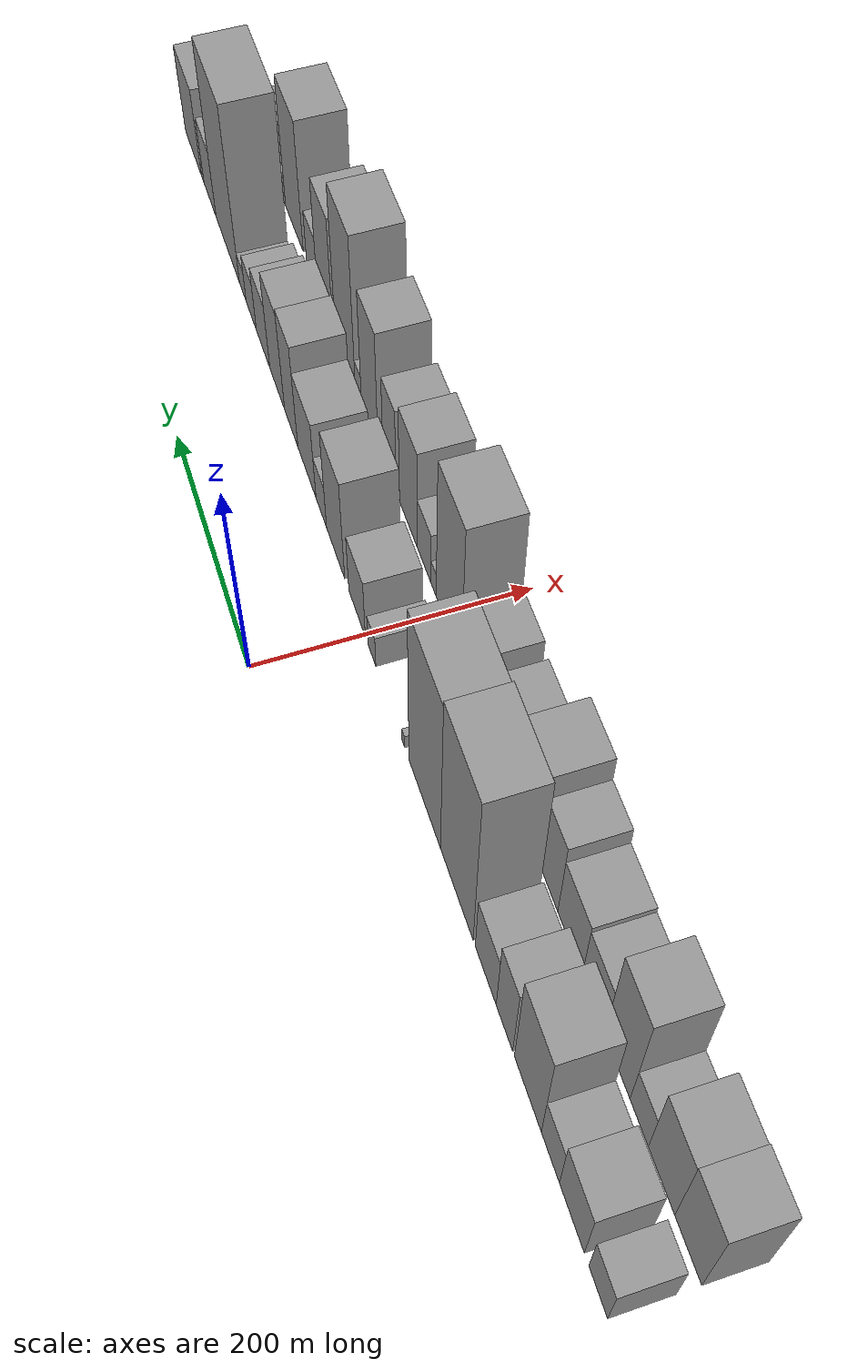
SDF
<sdf version="1.6">
 <world name="default">
  <scene>
   <sky><clouds><speed>12</speed></clouds></sky>
   <ambient>0.4 0.4 0.4 1</ambient>
   <background>0.7 0.7 0.7 1</background>
   <shadows>1</shadows>
  </scene>
  <gravity>0 0 -9.8066</gravity>
  <magnetic_field>6e-06 2.3e-05 -4.2e-05</magnetic_field>
  <physics default="0" name="default_physics" type="ode">
   <ode>
    <solver>
     <type>quick</type>
     <iters>10</iters>
     <sor>1.0</sor>
     <use_dynamic_moi_rescaling>0</use_dynamic_moi_rescaling>
    </solver>
    <constraints>
     <cfm>0</cfm>
     <erp>0.2</erp>
     <contact_max_correcting_vel>100</contact_max_correcting_vel>
     <contact_surface_layer>0.001</contact_surface_layer>
    </constraints>
   </ode>
   <max_step_size>0.004</max_step_size>
   <real_time_factor>1</real_time_factor>
   <real_time_update_rate>250</real_time_update_rate>
  </physics>
  <light name="sun" type="directional">
   <pose>0 0 10 0 0 0</pose>
   <diffuse>0.8 0.8 0.8 1</diffuse>
   <specular>0.2 0.2 0.2 1</specular>
   <attenuation>
    <range>1000</range>
    <constant>0.9</constant>
    <linear>0.01</linear>
    <quadratic>0.001</quadratic>
   </attenuation>
   <direction>-0.5 0.1 -0.9</direction>
  </light>
  <model name="building_1">
   <static>1</static>
   <pose>100.0000 -435.7821 0 0.000000 0.000000 0.000000</pose>
   <link name="link">
    <pose>0 0 27.00 0 0 0</pose>
    <collision name="collision"><geometry><box><size>40.0000 28.4359 54.0000</size></box></geometry></collision>
    <visual name="visual">
     <cast_shadows>0</cast_shadows>
     <geometry><box><size>40.0000 28.4359 54.0000</size></box></geometry>
     <material>
      <script>
       <uri>model://grey_wall/materials/scripts</uri>
       <uri>model://grey_wall/materials/textures</uri>
       <name>vrc/grey_wall</name>
      </script>
     </material>
    </visual>
   </link>
  </model>
  <model name="building_2">
   <static>1</static>
   <pose>100.0000 -394.8124 0 0.000000 0.000000 0.000000</pose>
   <link name="link">
    <pose>0 0 36.00 0 0 0</pose>
    <collision name="collision"><geometry><box><size>40.0000 39.5034 72.0000</size></box></geometry></collision>
    <visual name="visual">
     <cast_shadows>0</cast_shadows>
     <geometry><box><size>40.0000 39.5034 72.0000</size></box></geometry>
     <material>
      <script>
       <uri>model://grey_wall/materials/scripts</uri>
       <uri>model://grey_wall/materials/textures</uri>
       <name>vrc/grey_wall</name>
      </script>
     </material>
    </visual>
   </link>
  </model>
  <model name="building_3">
   <static>1</static>
   <pose>100.0000 -360.1976 0 0.000000 0.000000 0.000000</pose>
   <link name="link">
    <pose>0 0 28.50 0 0 0</pose>
    <collision name="collision"><geometry><box><size>40.0000 29.7262 57.0000</size></box></geometry></collision>
    <visual name="visual">
     <cast_shadows>0</cast_shadows>
     <geometry><box><size>40.0000 29.7262 57.0000</size></box></geometry>
     <material>
      <script>
       <uri>model://grey_wall/materials/scripts</uri>
       <uri>model://grey_wall/materials/textures</uri>
       <name>vrc/grey_wall</name>
      </script>
     </material>
    </visual>
   </link>
  </model>
  <model name="building_4">
   <static>1</static>
   <pose>100.0000 -322.3802 0 0.000000 0.000000 0.000000</pose>
   <link name="link">
    <pose>0 0 61.50 0 0 0</pose>
    <collision name="collision"><geometry><box><size>40.0000 45.9087 123.0000</size></box></geometry></collision>
    <visual name="visual">
     <cast_shadows>0</cast_shadows>
     <geometry><box><size>40.0000 45.9087 123.0000</size></box></geometry>
     <material>
      <script>
       <uri>model://grey_wall/materials/scripts</uri>
       <uri>model://grey_wall/materials/textures</uri>
       <name>vrc/grey_wall</name>
      </script>
     </material>
    </visual>
   </link>
  </model>
  <model name="building_5">
   <static>1</static>
   <pose>100.0000 -281.8049 0 0.000000 0.000000 0.000000</pose>
   <link name="link">
    <pose>0 0 46.50 0 0 0</pose>
    <collision name="collision"><geometry><box><size>40.0000 29.2420 93.0000</size></box></geometry></collision>
    <visual name="visual">
     <cast_shadows>0</cast_shadows>
     <geometry><box><size>40.0000 29.2420 93.0000</size></box></geometry>
     <material>
      <script>
       <uri>model://grey_wall/materials/scripts</uri>
       <uri>model://grey_wall/materials/textures</uri>
       <name>vrc/grey_wall</name>
      </script>
     </material>
    </visual>
   </link>
  </model>
  <model name="building_6">
   <static>1</static>
   <pose>100.0000 -248.0480 0 0.000000 0.000000 0.000000</pose>
   <link name="link">
    <pose>0 0 34.50 0 0 0</pose>
    <collision name="collision"><geometry><box><size>40.0000 38.2718 69.0000</size></box></geometry></collision>
    <visual name="visual">
     <cast_shadows>0</cast_shadows>
     <geometry><box><size>40.0000 38.2718 69.0000</size></box></geometry>
     <material>
      <script>
       <uri>model://grey_wall/materials/scripts</uri>
       <uri>model://grey_wall/materials/textures</uri>
       <name>vrc/grey_wall</name>
      </script>
     </material>
    </visual>
   </link>
  </model>
  <model name="building_7">
   <static>1</static>
   <pose>100.0000 -193.2981 0 0.000000 0.000000 0.000000</pose>
   <link name="link">
    <pose>0 0 96.00 0 0 0</pose>
    <collision name="collision"><geometry><box><size>40.0000 63.2281 192.0000</size></box></geometry></collision>
    <visual name="visual">
     <cast_shadows>0</cast_shadows>
     <geometry><box><size>40.0000 63.2281 192.0000</size></box></geometry>
     <material>
      <script>
       <uri>model://grey_wall/materials/scripts</uri>
       <uri>model://grey_wall/materials/textures</uri>
       <name>vrc/grey_wall</name>
      </script>
     </material>
    </visual>
   </link>
  </model>
  <model name="building_8">
   <static>1</static>
   <pose>100.0000 -129.5539 0 0.000000 0.000000 0.000000</pose>
   <link name="link">
    <pose>0 0 93.00 0 0 0</pose>
    <collision name="collision"><geometry><box><size>40.0000 64.2602 186.0000</size></box></geometry></collision>
    <visual name="visual">
     <cast_shadows>0</cast_shadows>
     <geometry><box><size>40.0000 64.2602 186.0000</size></box></geometry>
     <material>
      <script>
       <uri>model://grey_wall/materials/scripts</uri>
       <uri>model://grey_wall/materials/textures</uri>
       <name>vrc/grey_wall</name>
      </script>
     </material>
    </visual>
   </link>
  </model>
  <model name="building_9">
   <static>1</static>
   <pose>100.0000 -85.4119 0 0.000000 0.000000 0.000000</pose>
   <link name="link">
    <pose>0 0 7.50 0 0 0</pose>
    <collision name="collision"><geometry><box><size>40.0000 6.0238 15.0000</size></box></geometry></collision>
    <visual name="visual">
     <cast_shadows>0</cast_shadows>
     <geometry><box><size>40.0000 6.0238 15.0000</size></box></geometry>
     <material>
      <script>
       <uri>model://grey_wall/materials/scripts</uri>
       <uri>model://grey_wall/materials/textures</uri>
       <name>vrc/grey_wall</name>
      </script>
     </material>
    </visual>
   </link>
  </model>
  <model name="building_10">
   <static>1</static>
   <pose>100.0000 -16.3700 0 0.000000 0.000000 0.000000</pose>
   <link name="link">
    <pose>0 0 18.00 0 0 0</pose>
    <collision name="collision"><geometry><box><size>40.0000 18.0200 36.0000</size></box></geometry></collision>
    <visual name="visual">
     <cast_shadows>0</cast_shadows>
     <geometry><box><size>40.0000 18.0200 36.0000</size></box></geometry>
     <material>
      <script>
       <uri>model://grey_wall/materials/scripts</uri>
       <uri>model://grey_wall/materials/textures</uri>
       <name>vrc/grey_wall</name>
      </script>
     </material>
    </visual>
   </link>
  </model>
  <model name="building_11">
   <static>1</static>
   <pose>100.0000 17.7162 0 0.000000 0.000000 0.000000</pose>
   <link name="link">
    <pose>0 0 33.00 0 0 0</pose>
    <collision name="collision"><geometry><box><size>40.0000 38.1523 66.0000</size></box></geometry></collision>
    <visual name="visual">
     <cast_shadows>0</cast_shadows>
     <geometry><box><size>40.0000 38.1523 66.0000</size></box></geometry>
     <material>
      <script>
       <uri>model://grey_wall/materials/scripts</uri>
       <uri>model://grey_wall/materials/textures</uri>
       <name>vrc/grey_wall</name>
      </script>
     </material>
    </visual>
   </link>
  </model>
  <model name="building_12">
   <static>1</static>
   <pose>100.0000 68.7548 0 0.000000 0.000000 0.000000</pose>
   <link name="link">
    <pose>0 0 55.50 0 0 0</pose>
    <collision name="collision"><geometry><box><size>40.0000 43.9248 111.0000</size></box></geometry></collision>
    <visual name="visual">
     <cast_shadows>0</cast_shadows>
     <geometry><box><size>40.0000 43.9248 111.0000</size></box></geometry>
     <material>
      <script>
       <uri>model://grey_wall/materials/scripts</uri>
       <uri>model://grey_wall/materials/textures</uri>
       <name>vrc/grey_wall</name>
      </script>
     </material>
    </visual>
   </link>
  </model>
  <model name="building_13">
   <static>1</static>
   <pose>100.0000 103.9555 0 0.000000 0.000000 0.000000</pose>
   <link name="link">
    <pose>0 0 24.00 0 0 0</pose>
    <collision name="collision"><geometry><box><size>40.0000 26.4766 48.0000</size></box></geometry></collision>
    <visual name="visual">
     <cast_shadows>0</cast_shadows>
     <geometry><box><size>40.0000 26.4766 48.0000</size></box></geometry>
     <material>
      <script>
       <uri>model://grey_wall/materials/scripts</uri>
       <uri>model://grey_wall/materials/textures</uri>
       <name>vrc/grey_wall</name>
      </script>
     </material>
    </visual>
   </link>
  </model>
  <model name="building_14">
   <static>1</static>
   <pose>100.0000 140.5373 0 0.000000 0.000000 0.000000</pose>
   <link name="link">
    <pose>0 0 42.00 0 0 0</pose>
    <collision name="collision"><geometry><box><size>40.0000 46.6870 84.0000</size></box></geometry></collision>
    <visual name="visual">
     <cast_shadows>0</cast_shadows>
     <geometry><box><size>40.0000 46.6870 84.0000</size></box></geometry>
     <material>
      <script>
       <uri>model://grey_wall/materials/scripts</uri>
       <uri>model://grey_wall/materials/textures</uri>
       <name>vrc/grey_wall</name>
      </script>
     </material>
    </visual>
   </link>
  </model>
  <model name="building_15">
   <static>1</static>
   <pose>100.0000 181.5682 0 0.000000 0.000000 0.000000</pose>
   <link name="link">
    <pose>0 0 55.50 0 0 0</pose>
    <collision name="collision"><geometry><box><size>40.0000 35.3749 111.0000</size></box></geometry></collision>
    <visual name="visual">
     <cast_shadows>0</cast_shadows>
     <geometry><box><size>40.0000 35.3749 111.0000</size></box></geometry>
     <material>
      <script>
       <uri>model://grey_wall/materials/scripts</uri>
       <uri>model://grey_wall/materials/textures</uri>
       <name>vrc/grey_wall</name>
      </script>
     </material>
    </visual>
   </link>
  </model>
  <model name="building_16">
   <static>1</static>
   <pose>100.0000 219.5520 0 0.000000 0.000000 0.000000</pose>
   <link name="link">
    <pose>0 0 52.50 0 0 0</pose>
    <collision name="collision"><geometry><box><size>40.0000 40.5926 105.0000</size></box></geometry></collision>
    <visual name="visual">
     <cast_shadows>0</cast_shadows>
     <geometry><box><size>40.0000 40.5926 105.0000</size></box></geometry>
     <material>
      <script>
       <uri>model://grey_wall/materials/scripts</uri>
       <uri>model://grey_wall/materials/textures</uri>
       <name>vrc/grey_wall</name>
      </script>
     </material>
    </visual>
   </link>
  </model>
  <model name="building_17">
   <static>1</static>
   <pose>100.0000 258.8939 0 0.000000 0.000000 0.000000</pose>
   <link name="link">
    <pose>0 0 34.50 0 0 0</pose>
    <collision name="collision"><geometry><box><size>40.0000 38.0912 69.0000</size></box></geometry></collision>
    <visual name="visual">
     <cast_shadows>0</cast_shadows>
     <geometry><box><size>40.0000 38.0912 69.0000</size></box></geometry>
     <material>
      <script>
       <uri>model://grey_wall/materials/scripts</uri>
       <uri>model://grey_wall/materials/textures</uri>
       <name>vrc/grey_wall</name>
      </script>
     </material>
    </visual>
   </link>
  </model>
  <model name="building_18">
   <static>1</static>
   <pose>100.0000 292.8784 0 0.000000 0.000000 0.000000</pose>
   <link name="link">
    <pose>0 0 25.50 0 0 0</pose>
    <collision name="collision"><geometry><box><size>40.0000 29.8777 51.0000</size></box></geometry></collision>
    <visual name="visual">
     <cast_shadows>0</cast_shadows>
     <geometry><box><size>40.0000 29.8777 51.0000</size></box></geometry>
     <material>
      <script>
       <uri>model://grey_wall/materials/scripts</uri>
       <uri>model://grey_wall/materials/textures</uri>
       <name>vrc/grey_wall</name>
      </script>
     </material>
    </visual>
   </link>
  </model>
  <model name="building_19">
   <static>1</static>
   <pose>100.0000 317.6770 0 0.000000 0.000000 0.000000</pose>
   <link name="link">
    <pose>0 0 16.50 0 0 0</pose>
    <collision name="collision"><geometry><box><size>40.0000 19.7196 33.0000</size></box></geometry></collision>
    <visual name="visual">
     <cast_shadows>0</cast_shadows>
     <geometry><box><size>40.0000 19.7196 33.0000</size></box></geometry>
     <material>
      <script>
       <uri>model://grey_wall/materials/scripts</uri>
       <uri>model://grey_wall/materials/textures</uri>
       <name>vrc/grey_wall</name>
      </script>
     </material>
    </visual>
   </link>
  </model>
  <model name="building_20">
   <static>1</static>
   <pose>100.0000 363.3611 0 0.000000 0.000000 0.000000</pose>
   <link name="link">
    <pose>0 0 90.00 0 0 0</pose>
    <collision name="collision"><geometry><box><size>40.0000 71.6485 180.0000</size></box></geometry></collision>
    <visual name="visual">
     <cast_shadows>0</cast_shadows>
     <geometry><box><size>40.0000 71.6485 180.0000</size></box></geometry>
     <material>
      <script>
       <uri>model://grey_wall/materials/scripts</uri>
       <uri>model://grey_wall/materials/textures</uri>
       <name>vrc/grey_wall</name>
      </script>
     </material>
    </visual>
   </link>
  </model>
  <model name="building_21">
   <static>1</static>
   <pose>100.0000 418.6644 0 0.000000 0.000000 0.000000</pose>
   <link name="link">
    <pose>0 0 34.50 0 0 0</pose>
    <collision name="collision"><geometry><box><size>40.0000 38.9581 69.0000</size></box></geometry></collision>
    <visual name="visual">
     <cast_shadows>0</cast_shadows>
     <geometry><box><size>40.0000 38.9581 69.0000</size></box></geometry>
     <material>
      <script>
       <uri>model://grey_wall/materials/scripts</uri>
       <uri>model://grey_wall/materials/textures</uri>
       <name>vrc/grey_wall</name>
      </script>
     </material>
    </visual>
   </link>
  </model>
  <model name="building_22">
   <static>1</static>
   <pose>100.0000 442.0077 0 0.000000 0.000000 0.000000</pose>
   <link name="link">
    <pose>0 0 9.00 0 0 0</pose>
    <collision name="collision"><geometry><box><size>40.0000 7.7286 18.0000</size></box></geometry></collision>
    <visual name="visual">
     <cast_shadows>0</cast_shadows>
     <geometry><box><size>40.0000 7.7286 18.0000</size></box></geometry>
     <material>
      <script>
       <uri>model://grey_wall/materials/scripts</uri>
       <uri>model://grey_wall/materials/textures</uri>
       <name>vrc/grey_wall</name>
      </script>
     </material>
    </visual>
   </link>
  </model>
  <model name="building_23">
   <static>1</static>
   <pose>100.0000 472.1573 0 0.000000 0.000000 0.000000</pose>
   <link name="link">
    <pose>0 0 45.00 0 0 0</pose>
    <collision name="collision"><geometry><box><size>40.0000 52.5705 90.0000</size></box></geometry></collision>
    <visual name="visual">
     <cast_shadows>0</cast_shadows>
     <geometry><box><size>40.0000 52.5705 90.0000</size></box></geometry>
     <material>
      <script>
       <uri>model://grey_wall/materials/scripts</uri>
       <uri>model://grey_wall/materials/textures</uri>
       <name>vrc/grey_wall</name>
      </script>
     </material>
    </visual>
   </link>
  </model>
  <model name="building_24">
   <static>1</static>
   <pose>155.0000 -430.6750 0 0.000000 0.000000 0.000000</pose>
   <link name="link">
    <pose>0 0 51.00 0 0 0</pose>
    <collision name="collision"><geometry><box><size>40.0000 38.6499 102.0000</size></box></geometry></collision>
    <visual name="visual">
     <cast_shadows>0</cast_shadows>
     <geometry><box><size>40.0000 38.6499 102.0000</size></box></geometry>
     <material>
      <script>
       <uri>model://grey_wall/materials/scripts</uri>
       <uri>model://grey_wall/materials/textures</uri>
       <name>vrc/grey_wall</name>
      </script>
     </material>
    </visual>
   </link>
  </model>
  <model name="building_25">
   <static>1</static>
   <pose>155.0000 -391.5896 0 0.000000 0.000000 0.000000</pose>
   <link name="link">
    <pose>0 0 49.50 0 0 0</pose>
    <collision name="collision"><geometry><box><size>40.0000 39.5210 99.0000</size></box></geometry></collision>
    <visual name="visual">
     <cast_shadows>0</cast_shadows>
     <geometry><box><size>40.0000 39.5210 99.0000</size></box></geometry>
     <material>
      <script>
       <uri>model://grey_wall/materials/scripts</uri>
       <uri>model://grey_wall/materials/textures</uri>
       <name>vrc/grey_wall</name>
      </script>
     </material>
    </visual>
   </link>
  </model>
  <model name="building_26">
   <static>1</static>
   <pose>155.0000 -357.6924 0 0.000000 0.000000 0.000000</pose>
   <link name="link">
    <pose>0 0 25.50 0 0 0</pose>
    <collision name="collision"><geometry><box><size>40.0000 28.2734 51.0000</size></box></geometry></collision>
    <visual name="visual">
     <cast_shadows>0</cast_shadows>
     <geometry><box><size>40.0000 28.2734 51.0000</size></box></geometry>
     <material>
      <script>
       <uri>model://grey_wall/materials/scripts</uri>
       <uri>model://grey_wall/materials/textures</uri>
       <name>vrc/grey_wall</name>
      </script>
     </material>
    </visual>
   </link>
  </model>
  <model name="building_27">
   <static>1</static>
   <pose>155.0000 -323.4017 0 0.000000 0.000000 0.000000</pose>
   <link name="link">
    <pose>0 0 63.00 0 0 0</pose>
    <collision name="collision"><geometry><box><size>40.0000 40.3079 126.0000</size></box></geometry></collision>
    <visual name="visual">
     <cast_shadows>0</cast_shadows>
     <geometry><box><size>40.0000 40.3079 126.0000</size></box></geometry>
     <material>
      <script>
       <uri>model://grey_wall/materials/scripts</uri>
       <uri>model://grey_wall/materials/textures</uri>
       <name>vrc/grey_wall</name>
      </script>
     </material>
    </visual>
   </link>
  </model>
  <model name="building_28">
   <static>1</static>
   <pose>155.0000 -284.4662 0 0.000000 0.000000 0.000000</pose>
   <link name="link">
    <pose>0 0 34.50 0 0 0</pose>
    <collision name="collision"><geometry><box><size>40.0000 37.5630 69.0000</size></box></geometry></collision>
    <visual name="visual">
     <cast_shadows>0</cast_shadows>
     <geometry><box><size>40.0000 37.5630 69.0000</size></box></geometry>
     <material>
      <script>
       <uri>model://grey_wall/materials/scripts</uri>
       <uri>model://grey_wall/materials/textures</uri>
       <name>vrc/grey_wall</name>
      </script>
     </material>
    </visual>
   </link>
  </model>
  <model name="building_29">
   <static>1</static>
   <pose>155.0000 -244.6798 0 0.000000 0.000000 0.000000</pose>
   <link name="link">
    <pose>0 0 37.50 0 0 0</pose>
    <collision name="collision"><geometry><box><size>40.0000 42.0098 75.0000</size></box></geometry></collision>
    <visual name="visual">
     <cast_shadows>0</cast_shadows>
     <geometry><box><size>40.0000 42.0098 75.0000</size></box></geometry>
     <material>
      <script>
       <uri>model://grey_wall/materials/scripts</uri>
       <uri>model://grey_wall/materials/textures</uri>
       <name>vrc/grey_wall</name>
      </script>
     </material>
    </visual>
   </link>
  </model>
  <model name="building_30">
   <static>1</static>
   <pose>155.0000 -207.0503 0 0.000000 0.000000 0.000000</pose>
   <link name="link">
    <pose>0 0 46.50 0 0 0</pose>
    <collision name="collision"><geometry><box><size>40.0000 33.2493 93.0000</size></box></geometry></collision>
    <visual name="visual">
     <cast_shadows>0</cast_shadows>
     <geometry><box><size>40.0000 33.2493 93.0000</size></box></geometry>
     <material>
      <script>
       <uri>model://grey_wall/materials/scripts</uri>
       <uri>model://grey_wall/materials/textures</uri>
       <name>vrc/grey_wall</name>
      </script>
     </material>
    </visual>
   </link>
  </model>
  <model name="building_31">
   <static>1</static>
   <pose>155.0000 -169.4745 0 0.000000 0.000000 0.000000</pose>
   <link name="link">
    <pose>0 0 60.00 0 0 0</pose>
    <collision name="collision"><geometry><box><size>40.0000 41.9023 120.0000</size></box></geometry></collision>
    <visual name="visual">
     <cast_shadows>0</cast_shadows>
     <geometry><box><size>40.0000 41.9023 120.0000</size></box></geometry>
     <material>
      <script>
       <uri>model://grey_wall/materials/scripts</uri>
       <uri>model://grey_wall/materials/textures</uri>
       <name>vrc/grey_wall</name>
      </script>
     </material>
    </visual>
   </link>
  </model>
  <model name="building_32">
   <static>1</static>
   <pose>155.0000 -135.1415 0 0.000000 0.000000 0.000000</pose>
   <link name="link">
    <pose>0 0 9.00 0 0 0</pose>
    <collision name="collision"><geometry><box><size>40.0000 8.7636 18.0000</size></box></geometry></collision>
    <visual name="visual">
     <cast_shadows>0</cast_shadows>
     <geometry><box><size>40.0000 8.7636 18.0000</size></box></geometry>
     <material>
      <script>
       <uri>model://grey_wall/materials/scripts</uri>
       <uri>model://grey_wall/materials/textures</uri>
       <name>vrc/grey_wall</name>
      </script>
     </material>
    </visual>
   </link>
  </model>
  <model name="building_33">
   <static>1</static>
   <pose>155.0000 -106.3446 0 0.000000 0.000000 0.000000</pose>
   <link name="link">
    <pose>0 0 31.50 0 0 0</pose>
    <collision name="collision"><geometry><box><size>40.0000 36.8301 63.0000</size></box></geometry></collision>
    <visual name="visual">
     <cast_shadows>0</cast_shadows>
     <geometry><box><size>40.0000 36.8301 63.0000</size></box></geometry>
     <material>
      <script>
       <uri>model://grey_wall/materials/scripts</uri>
       <uri>model://grey_wall/materials/textures</uri>
       <name>vrc/grey_wall</name>
      </script>
     </material>
    </visual>
   </link>
  </model>
  <model name="building_34">
   <static>1</static>
   <pose>155.0000 -59.4112 0 0.000000 0.000000 0.000000</pose>
   <link name="link">
    <pose>0 0 36.00 0 0 0</pose>
    <collision name="collision"><geometry><box><size>40.0000 41.0367 72.0000</size></box></geometry></collision>
    <visual name="visual">
     <cast_shadows>0</cast_shadows>
     <geometry><box><size>40.0000 41.0367 72.0000</size></box></geometry>
     <material>
      <script>
       <uri>model://grey_wall/materials/scripts</uri>
       <uri>model://grey_wall/materials/textures</uri>
       <name>vrc/grey_wall</name>
      </script>
     </material>
    </visual>
   </link>
  </model>
  <model name="building_35">
   <static>1</static>
   <pose>155.0000 -12.3433 0 0.000000 0.000000 0.000000</pose>
   <link name="link">
    <pose>0 0 78.00 0 0 0</pose>
    <collision name="collision"><geometry><box><size>40.0000 53.0991 156.0000</size></box></geometry></collision>
    <visual name="visual">
     <cast_shadows>0</cast_shadows>
     <geometry><box><size>40.0000 53.0991 156.0000</size></box></geometry>
     <material>
      <script>
       <uri>model://grey_wall/materials/scripts</uri>
       <uri>model://grey_wall/materials/textures</uri>
       <name>vrc/grey_wall</name>
      </script>
     </material>
    </visual>
   </link>
  </model>
  <model name="building_36">
   <static>1</static>
   <pose>155.0000 19.9528 0 0.000000 0.000000 0.000000</pose>
   <link name="link">
    <pose>0 0 13.50 0 0 0</pose>
    <collision name="collision"><geometry><box><size>40.0000 11.4931 27.0000</size></box></geometry></collision>
    <visual name="visual">
     <cast_shadows>0</cast_shadows>
     <geometry><box><size>40.0000 11.4931 27.0000</size></box></geometry>
     <material>
      <script>
       <uri>model://grey_wall/materials/scripts</uri>
       <uri>model://grey_wall/materials/textures</uri>
       <name>vrc/grey_wall</name>
      </script>
     </material>
    </visual>
   </link>
  </model>
  <model name="building_37">
   <static>1</static>
   <pose>155.0000 40.9216 0 0.000000 0.000000 0.000000</pose>
   <link name="link">
    <pose>0 0 28.50 0 0 0</pose>
    <collision name="collision"><geometry><box><size>40.0000 30.4445 57.0000</size></box></geometry></collision>
    <visual name="visual">
     <cast_shadows>0</cast_shadows>
     <geometry><box><size>40.0000 30.4445 57.0000</size></box></geometry>
     <material>
      <script>
       <uri>model://grey_wall/materials/scripts</uri>
       <uri>model://grey_wall/materials/textures</uri>
       <name>vrc/grey_wall</name>
      </script>
     </material>
    </visual>
   </link>
  </model>
  <model name="building_38">
   <static>1</static>
   <pose>155.0000 76.2373 0 0.000000 0.000000 0.000000</pose>
   <link name="link">
    <pose>0 0 54.00 0 0 0</pose>
    <collision name="collision"><geometry><box><size>40.0000 40.1870 108.0000</size></box></geometry></collision>
    <visual name="visual">
     <cast_shadows>0</cast_shadows>
     <geometry><box><size>40.0000 40.1870 108.0000</size></box></geometry>
     <material>
      <script>
       <uri>model://grey_wall/materials/scripts</uri>
       <uri>model://grey_wall/materials/textures</uri>
       <name>vrc/grey_wall</name>
      </script>
     </material>
    </visual>
   </link>
  </model>
  <model name="building_39">
   <static>1</static>
   <pose>155.0000 119.8087 0 0.000000 0.000000 0.000000</pose>
   <link name="link">
    <pose>0 0 46.50 0 0 0</pose>
    <collision name="collision"><geometry><box><size>40.0000 30.9559 93.0000</size></box></geometry></collision>
    <visual name="visual">
     <cast_shadows>0</cast_shadows>
     <geometry><box><size>40.0000 30.9559 93.0000</size></box></geometry>
     <material>
      <script>
       <uri>model://grey_wall/materials/scripts</uri>
       <uri>model://grey_wall/materials/textures</uri>
       <name>vrc/grey_wall</name>
      </script>
     </material>
    </visual>
   </link>
  </model>
  <model name="building_40">
   <static>1</static>
   <pose>155.0000 144.5600 0 0.000000 0.000000 0.000000</pose>
   <link name="link">
    <pose>0 0 7.50 0 0 0</pose>
    <collision name="collision"><geometry><box><size>40.0000 6.5467 15.0000</size></box></geometry></collision>
    <visual name="visual">
     <cast_shadows>0</cast_shadows>
     <geometry><box><size>40.0000 6.5467 15.0000</size></box></geometry>
     <material>
      <script>
       <uri>model://grey_wall/materials/scripts</uri>
       <uri>model://grey_wall/materials/textures</uri>
       <name>vrc/grey_wall</name>
      </script>
     </material>
    </visual>
   </link>
  </model>
  <model name="building_41">
   <static>1</static>
   <pose>155.0000 168.2042 0 0.000000 0.000000 0.000000</pose>
   <link name="link">
    <pose>0 0 61.50 0 0 0</pose>
    <collision name="collision"><geometry><box><size>40.0000 40.7418 123.0000</size></box></geometry></collision>
    <visual name="visual">
     <cast_shadows>0</cast_shadows>
     <geometry><box><size>40.0000 40.7418 123.0000</size></box></geometry>
     <material>
      <script>
       <uri>model://grey_wall/materials/scripts</uri>
       <uri>model://grey_wall/materials/textures</uri>
       <name>vrc/grey_wall</name>
      </script>
     </material>
    </visual>
   </link>
  </model>
  <model name="building_42">
   <static>1</static>
   <pose>155.0000 196.4175 0 0.000000 0.000000 0.000000</pose>
   <link name="link">
    <pose>0 0 15.00 0 0 0</pose>
    <collision name="collision"><geometry><box><size>40.0000 15.6848 30.0000</size></box></geometry></collision>
    <visual name="visual">
     <cast_shadows>0</cast_shadows>
     <geometry><box><size>40.0000 15.6848 30.0000</size></box></geometry>
     <material>
      <script>
       <uri>model://grey_wall/materials/scripts</uri>
       <uri>model://grey_wall/materials/textures</uri>
       <name>vrc/grey_wall</name>
      </script>
     </material>
    </visual>
   </link>
  </model>
  <model name="building_43">
   <static>1</static>
   <pose>155.0000 229.8023 0 0.000000 0.000000 0.000000</pose>
   <link name="link">
    <pose>0 0 79.50 0 0 0</pose>
    <collision name="collision"><geometry><box><size>40.0000 51.0848 159.0000</size></box></geometry></collision>
    <visual name="visual">
     <cast_shadows>0</cast_shadows>
     <geometry><box><size>40.0000 51.0848 159.0000</size></box></geometry>
     <material>
      <script>
       <uri>model://grey_wall/materials/scripts</uri>
       <uri>model://grey_wall/materials/textures</uri>
       <name>vrc/grey_wall</name>
      </script>
     </material>
    </visual>
   </link>
  </model>
  <model name="building_44">
   <static>1</static>
   <pose>155.0000 283.3261 0 0.000000 0.000000 0.000000</pose>
   <link name="link">
    <pose>0 0 58.50 0 0 0</pose>
    <collision name="collision"><geometry><box><size>40.0000 41.9628 117.0000</size></box></geometry></collision>
    <visual name="visual">
     <cast_shadows>0</cast_shadows>
     <geometry><box><size>40.0000 41.9628 117.0000</size></box></geometry>
     <material>
      <script>
       <uri>model://grey_wall/materials/scripts</uri>
       <uri>model://grey_wall/materials/textures</uri>
       <name>vrc/grey_wall</name>
      </script>
     </material>
    </visual>
   </link>
  </model>
  <model name="building_45">
   <static>1</static>
   <pose>155.0000 319.2117 0 0.000000 0.000000 0.000000</pose>
   <link name="link">
    <pose>0 0 27.00 0 0 0</pose>
    <collision name="collision"><geometry><box><size>40.0000 29.8083 54.0000</size></box></geometry></collision>
    <visual name="visual">
     <cast_shadows>0</cast_shadows>
     <geometry><box><size>40.0000 29.8083 54.0000</size></box></geometry>
     <material>
      <script>
       <uri>model://grey_wall/materials/scripts</uri>
       <uri>model://grey_wall/materials/textures</uri>
       <name>vrc/grey_wall</name>
      </script>
     </material>
    </visual>
   </link>
  </model>
  <model name="building_46">
   <static>1</static>
   <pose>155.0000 368.4703 0 0.000000 0.000000 0.000000</pose>
   <link name="link">
    <pose>0 0 67.50 0 0 0</pose>
    <collision name="collision"><geometry><box><size>40.0000 50.7090 135.0000</size></box></geometry></collision>
    <visual name="visual">
     <cast_shadows>0</cast_shadows>
     <geometry><box><size>40.0000 50.7090 135.0000</size></box></geometry>
     <material>
      <script>
       <uri>model://grey_wall/materials/scripts</uri>
       <uri>model://grey_wall/materials/textures</uri>
       <name>vrc/grey_wall</name>
      </script>
     </material>
    </visual>
   </link>
  </model>
  <model name="building_47">
   <static>1</static>
   <pose>155.0000 401.6540 0 0.000000 0.000000 0.000000</pose>
   <link name="link">
    <pose>0 0 15.00 0 0 0</pose>
    <collision name="collision"><geometry><box><size>40.0000 15.6585 30.0000</size></box></geometry></collision>
    <visual name="visual">
     <cast_shadows>0</cast_shadows>
     <geometry><box><size>40.0000 15.6585 30.0000</size></box></geometry>
     <material>
      <script>
       <uri>model://grey_wall/materials/scripts</uri>
       <uri>model://grey_wall/materials/textures</uri>
       <name>vrc/grey_wall</name>
      </script>
     </material>
    </visual>
   </link>
  </model>
  <model name="building_48">
   <static>1</static>
   <pose>155.0000 429.8889 0 0.000000 0.000000 0.000000</pose>
   <link name="link">
    <pose>0 0 36.00 0 0 0</pose>
    <collision name="collision"><geometry><box><size>40.0000 40.8112 72.0000</size></box></geometry></collision>
    <visual name="visual">
     <cast_shadows>0</cast_shadows>
     <geometry><box><size>40.0000 40.8112 72.0000</size></box></geometry>
     <material>
      <script>
       <uri>model://grey_wall/materials/scripts</uri>
       <uri>model://grey_wall/materials/textures</uri>
       <name>vrc/grey_wall</name>
      </script>
     </material>
    </visual>
   </link>
  </model>
 </world>
</sdf>
